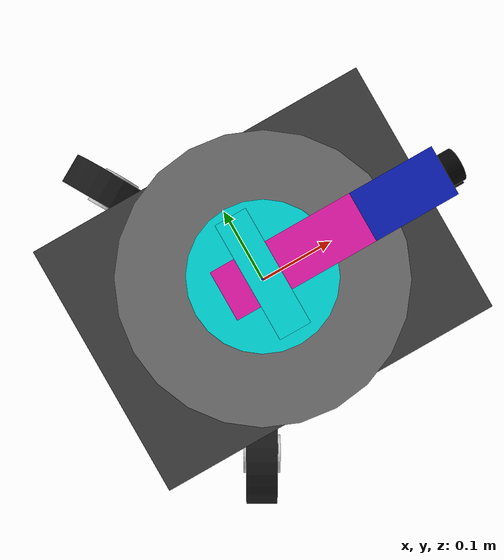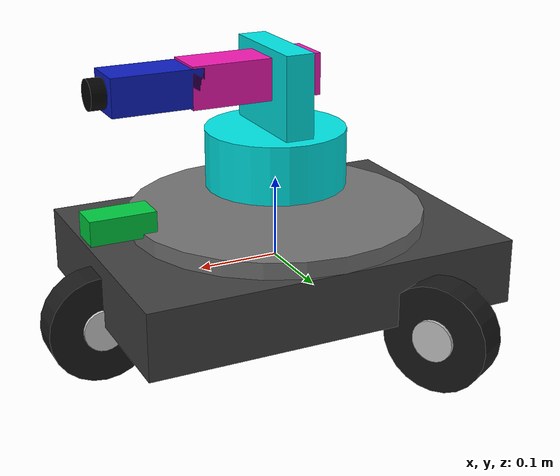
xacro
<?xml version="1.0"?>
<!-- LEKIWI Full Robot: base + gimbal + sensors -->
<robot name="lekiwi_fcr" xmlns:xacro="http://www.ros.org/wiki/xacro">
  <xacro:arg name="enable_depth_camera" default="false"/>

  <!-- Include sub-models -->
  <xacro:include filename="lekiwi_base.xacro"/>
  <xacro:include filename="lekiwi_gimbal.xacro"/>
  <xacro:include filename="lekiwi_sensors.xacro"/>

  <!-- Instantiate base chassis -->
  <xacro:lekiwi_base prefix=""/>

  <!-- Instantiate gimbal on top of base -->
  <xacro:lekiwi_gimbal parent="base_link" prefix=""/>

  <!-- Instantiate sensors -->
  <xacro:lekiwi_sensors parent="base_link" prefix="" enable_depth_camera="$(arg enable_depth_camera)"/>

  <!-- Gazebo plugin: joint state publisher (TF + RViz updates for all joints) -->
  <gazebo>
    <plugin name="joint_state_publisher" filename="libgazebo_ros_joint_state_publisher.so">
      <ros>
        <remapping>joint_states:=/joint_states</remapping>
      </ros>
      <joint_name>front_wheel_joint</joint_name>
      <joint_name>left_wheel_joint</joint_name>
      <joint_name>right_wheel_joint</joint_name>
      <joint_name>gimbal_yaw_joint</joint_name>
      <joint_name>gimbal_pitch_joint</joint_name>
      <update_rate>100</update_rate>
    </plugin>
  </gazebo>

  <!-- Gazebo plugin: drives gimbal yaw/pitch joints from /cmd_gimbal -->
  <gazebo>
    <plugin name="gimbal_controller" filename="libgimbal_controller_plugin.so">
      <yaw_joint>gimbal_yaw_joint</yaw_joint>
      <pitch_joint>gimbal_pitch_joint</pitch_joint>
    </plugin>
  </gazebo>

  <!-- Gazebo plugin for omnidirectional drive -->
  <gazebo>
    <plugin name="omni_drive" filename="libgazebo_ros_planar_move.so">
      <ros>
        <remapping>cmd_vel:=/cmd_vel</remapping>
        <remapping>odom:=/odom</remapping>
      </ros>
      <odom_frame_id>odom</odom_frame_id>
      <robot_base_frame_id>base_link</robot_base_frame_id>
      <linear_velocity_max>1.0</linear_velocity_max>
      <angular_velocity_max>2.0</angular_velocity_max>
    </plugin>
  </gazebo>

</robot>

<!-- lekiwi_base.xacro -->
<!-- LEKIWI Base Chassis: 3-wheel omnidirectional mobile platform -->
<robot xmlns:xacro="http://www.ros.org/wiki/xacro">

  <xacro:macro name="lekiwi_base" params="parent:=base_link prefix:=''">
    <!-- Base link -->
    <link name="${prefix}base_link">
      <visual name="base_body">
        <origin xyz="0 0 0" rpy="0 0 0"/>
        <geometry>
          <box size="0.46 0.34 0.08"/>
        </geometry>
        <material name="dark_grey">
          <color rgba="0.25 0.25 0.25 1.0"/>
        </material>
      </visual>
      <visual name="base_top_plate">
        <origin xyz="0 0 0.055" rpy="0 0 0"/>
        <geometry>
          <cylinder radius="0.18" length="0.02"/>
        </geometry>
        <material name="medium_grey">
          <color rgba="0.45 0.45 0.45 1.0"/>
        </material>
      </visual>
      <collision>
        <geometry>
          <box size="0.46 0.34 0.08"/>
        </geometry>
      </collision>
      <inertial>
        <mass value="15.0"/>
        <inertia ixx="0.15" iyy="0.15" izz="0.25" ixy="0" ixz="0" iyz="0"/>
      </inertial>
    </link>

    <!-- Separate link so Gazebo can keep the front marker green. -->
    <link name="${prefix}front_marker_link">
      <visual name="front_marker">
        <origin xyz="0 0 0" rpy="0 0 0"/>
        <geometry>
          <box size="0.08 0.04 0.03"/>
        </geometry>
        <material name="front_green">
          <color rgba="0.0 0.8 0.25 1.0"/>
        </material>
      </visual>
      <inertial>
        <mass value="0.01"/>
        <inertia ixx="1e-6" iyy="1e-6" izz="1e-6" ixy="0" ixz="0" iyz="0"/>
      </inertial>
    </link>
    <joint name="${prefix}front_marker_joint" type="fixed">
      <parent link="${prefix}base_link"/>
      <child link="${prefix}front_marker_link"/>
      <origin xyz="0.20 0 0.075" rpy="0 0 0"/>
    </joint>

    <gazebo reference="${prefix}base_link">
      <material>Gazebo/DarkGrey</material>
    </gazebo>
    <gazebo reference="${prefix}front_marker_link">
      <material>Gazebo/Green</material>
    </gazebo>

    <!-- Omni wheels (3x, at 120° intervals) -->
    <xacro:macro name="omni_wheel" params="name angle">
      <link name="${prefix}${name}_wheel">
        <visual name="${name}_tire">
          <origin xyz="0 0 0" rpy="${pi/2} 0 0"/>
          <geometry>
            <cylinder radius="0.065" length="0.04"/>
          </geometry>
          <material name="black">
            <color rgba="0.1 0.1 0.1 1.0"/>
          </material>
        </visual>
        <visual name="${name}_hub">
          <origin xyz="0 0 0" rpy="${pi/2} 0 0"/>
          <geometry>
            <cylinder radius="0.025" length="0.048"/>
          </geometry>
          <material name="wheel_hub">
            <color rgba="0.8 0.8 0.8 1.0"/>
          </material>
        </visual>
        <collision>
          <origin xyz="0 0 0" rpy="${pi/2} 0 0"/>
          <geometry>
            <cylinder radius="0.065" length="0.04"/>
          </geometry>
        </collision>
        <inertial>
          <mass value="0.2"/>
          <inertia ixx="1e-4" iyy="1e-4" izz="2e-4" ixy="0" ixz="0" iyz="0"/>
        </inertial>
      </link>

      <joint name="${prefix}${name}_wheel_joint" type="continuous">
        <parent link="${prefix}base_link"/>
        <child link="${prefix}${name}_wheel"/>
        <origin xyz="${0.23 * cos(angle)} ${0.23 * sin(angle)} -0.045" rpy="0 0 ${angle}"/>
        <axis xyz="0 1 0"/>
      </joint>
      <gazebo reference="${prefix}${name}_wheel">
        <material>Gazebo/Black</material>
      </gazebo>
    </xacro:macro>

    <xacro:omni_wheel name="front" angle="${0}"/>
    <xacro:omni_wheel name="left" angle="${2*pi/3}"/>
    <xacro:omni_wheel name="right" angle="${4*pi/3}"/>

    <!-- IMU link -->
    <link name="${prefix}imu_link">
      <visual name="imu_marker">
        <origin xyz="0 0 0" rpy="0 0 0"/>
        <geometry>
          <box size="0.035 0.025 0.012"/>
        </geometry>
        <material name="imu_red">
          <color rgba="0.9 0.05 0.05 1.0"/>
        </material>
      </visual>
      <inertial>
        <mass value="0.01"/>
        <inertia ixx="1e-6" iyy="1e-6" izz="1e-6" ixy="0" ixz="0" iyz="0"/>
      </inertial>
    </link>
    <joint name="${prefix}imu_joint" type="fixed">
      <parent link="${prefix}base_link"/>
      <child link="${prefix}imu_link"/>
      <origin xyz="0 0 0.05" rpy="0 0 0"/>
    </joint>
    <gazebo reference="${prefix}imu_link">
      <material>Gazebo/Red</material>
    </gazebo>

  </xacro:macro>
</robot>

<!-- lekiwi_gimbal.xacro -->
<!-- LEKIWI Pan-Tilt Gimbal: 2-axis (yaw + pitch) with camera mount -->
<robot xmlns:xacro="http://www.ros.org/wiki/xacro">

  <xacro:macro name="lekiwi_gimbal" params="parent:=base_link prefix:=''">
    <!-- Pan (yaw) link -->
    <link name="${prefix}gimbal_yaw_link">
      <visual name="yaw_base">
        <origin xyz="0 0 0" rpy="0 0 0"/>
        <geometry>
          <cylinder radius="0.085" length="0.07"/>
        </geometry>
        <material name="gimbal_yaw_cyan">
          <color rgba="0.0 0.9 0.9 1.0"/>
        </material>
      </visual>
      <visual name="yaw_upright">
        <origin xyz="0 0 0.075" rpy="0 0 0"/>
        <geometry>
          <box size="0.035 0.13 0.12"/>
        </geometry>
        <material name="gimbal_side_cyan">
          <color rgba="0.0 0.9 0.9 1.0"/>
        </material>
      </visual>
      <inertial>
        <mass value="0.5"/>
        <inertia ixx="5e-4" iyy="5e-4" izz="1e-3" ixy="0" ixz="0" iyz="0"/>
      </inertial>
    </link>
    <gazebo reference="${prefix}gimbal_yaw_link">
      <material>Gazebo/Cyan</material>
    </gazebo>

    <joint name="${prefix}gimbal_yaw_joint" type="revolute">
      <parent link="${parent}"/>
      <child link="${prefix}gimbal_yaw_link"/>
      <origin xyz="0 0 0.13" rpy="0 0 0"/>
      <axis xyz="0 0 1"/>
      <limit effort="10" velocity="6.28" lower="-3.14" upper="3.14"/>
    </joint>

    <!-- Tilt (pitch) link -->
    <link name="${prefix}gimbal_pitch_link">
      <visual name="pitch_bar">
        <origin xyz="0.035 0 0" rpy="0 0 0"/>
        <geometry>
          <box size="0.16 0.055 0.05"/>
        </geometry>
        <material name="gimbal_pitch_magenta">
          <color rgba="0.95 0.1 0.7 1.0"/>
        </material>
      </visual>
      <inertial>
        <mass value="0.3"/>
        <inertia ixx="2e-4" iyy="2e-4" izz="1e-4" ixy="0" ixz="0" iyz="0"/>
      </inertial>
    </link>
    <gazebo reference="${prefix}gimbal_pitch_link">
      <material>Gazebo/Magenta</material>
    </gazebo>

    <joint name="${prefix}gimbal_pitch_joint" type="revolute">
      <parent link="${prefix}gimbal_yaw_link"/>
      <child link="${prefix}gimbal_pitch_link"/>
      <origin xyz="0 0 0.10" rpy="0 0 0"/>
      <axis xyz="0 1 0"/>
      <limit effort="5" velocity="3.14" lower="-1.57" upper="1.57"/>
    </joint>

    <!-- Camera link (mounted on pitch axis) -->
    <link name="${prefix}camera_link">
      <visual name="camera_body">
        <origin xyz="0.045 0 0" rpy="0 0 0"/>
        <geometry>
          <box size="0.11 0.055 0.045"/>
        </geometry>
        <material name="camera_blue">
          <color rgba="0.05 0.12 0.75 1.0"/>
        </material>
      </visual>
      <visual name="camera_lens">
        <origin xyz="0.11 0 0" rpy="0 ${pi/2} 0"/>
        <geometry>
          <cylinder radius="0.018" length="0.018"/>
        </geometry>
        <material name="lens_black">
          <color rgba="0.02 0.02 0.02 1.0"/>
        </material>
      </visual>
      <inertial>
        <mass value="0.1"/>
        <inertia ixx="1e-5" iyy="1e-5" izz="1e-5" ixy="0" ixz="0" iyz="0"/>
      </inertial>
    </link>
    <gazebo reference="${prefix}camera_link">
      <material>Gazebo/Blue</material>
    </gazebo>

    <joint name="${prefix}camera_joint" type="fixed">
      <parent link="${prefix}gimbal_pitch_link"/>
      <child link="${prefix}camera_link"/>
      <origin xyz="0.11 0 0" rpy="0 0 0"/>
    </joint>

    <!-- Camera optical frame (ROS convention: z-forward, x-right, y-down) -->
    <link name="${prefix}camera_optical_link"/>
    <joint name="${prefix}camera_optical_joint" type="fixed">
      <parent link="${prefix}camera_link"/>
      <child link="${prefix}camera_optical_link"/>
      <origin xyz="0 0 0" rpy="${-pi/2} 0 ${-pi/2}"/>
    </joint>

  </xacro:macro>
</robot>
